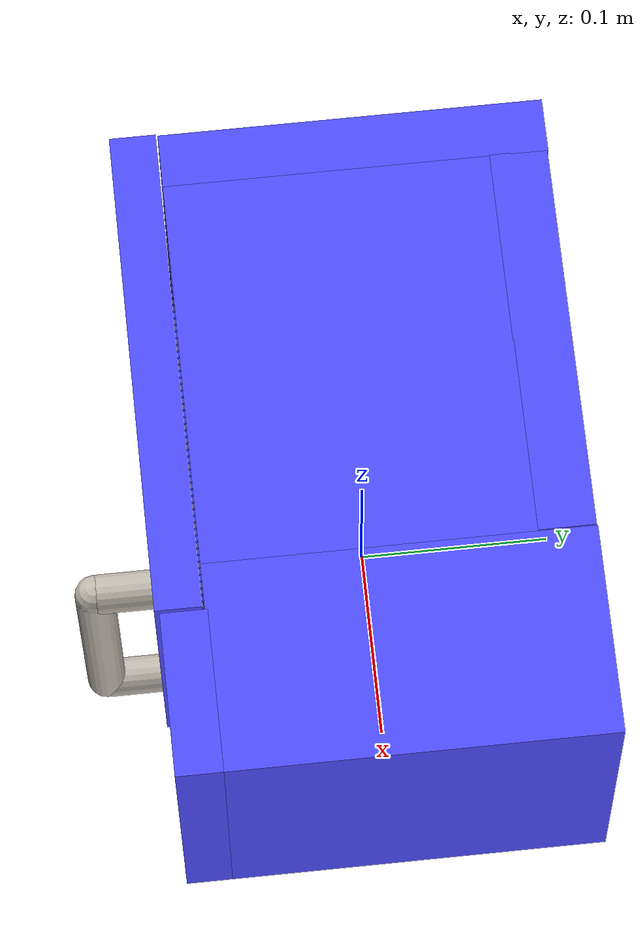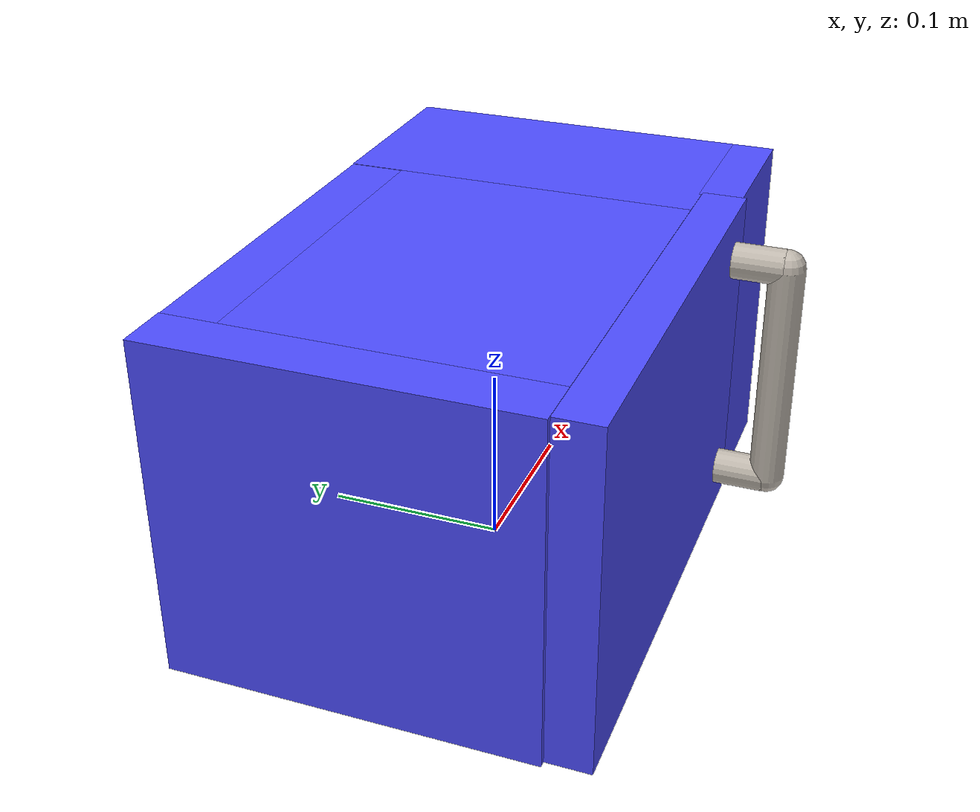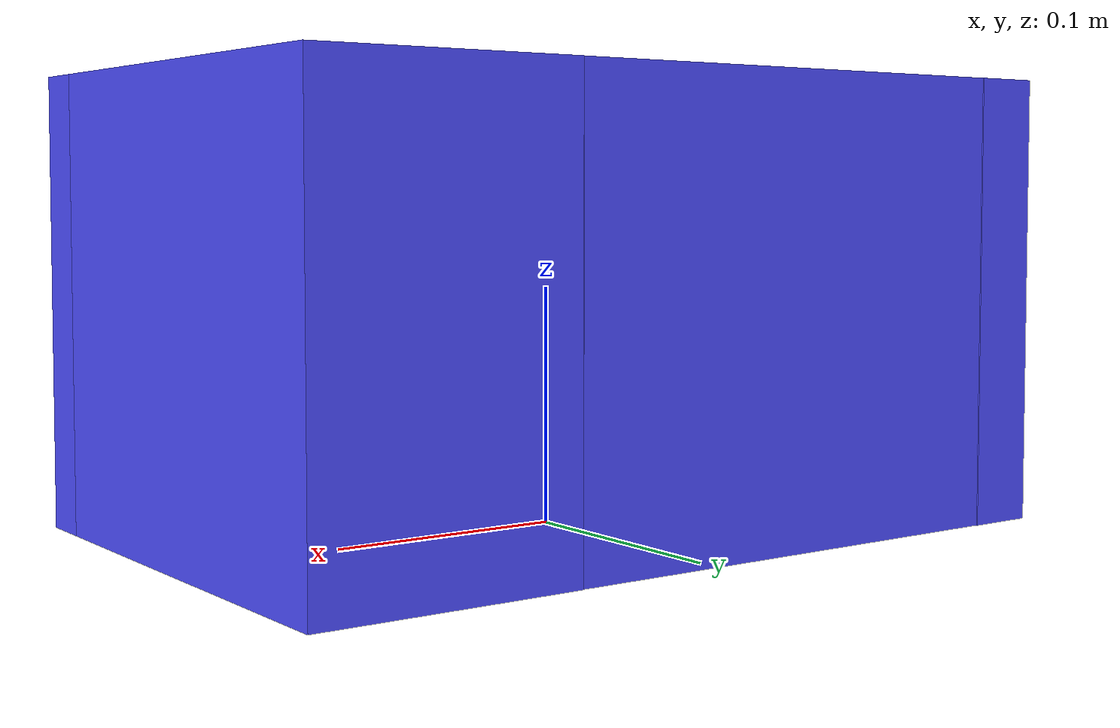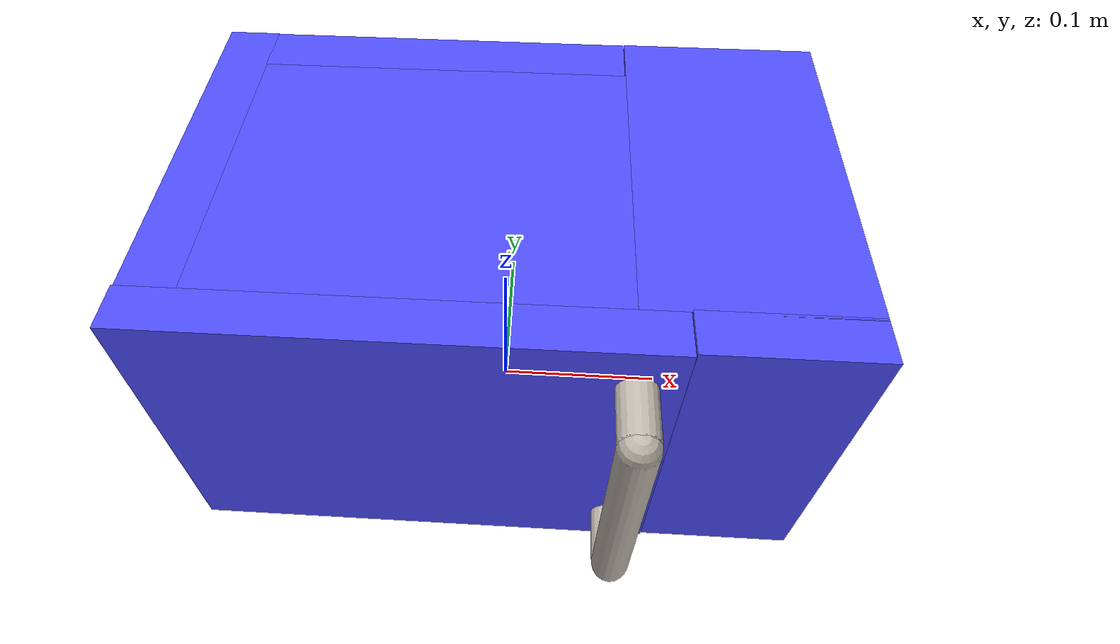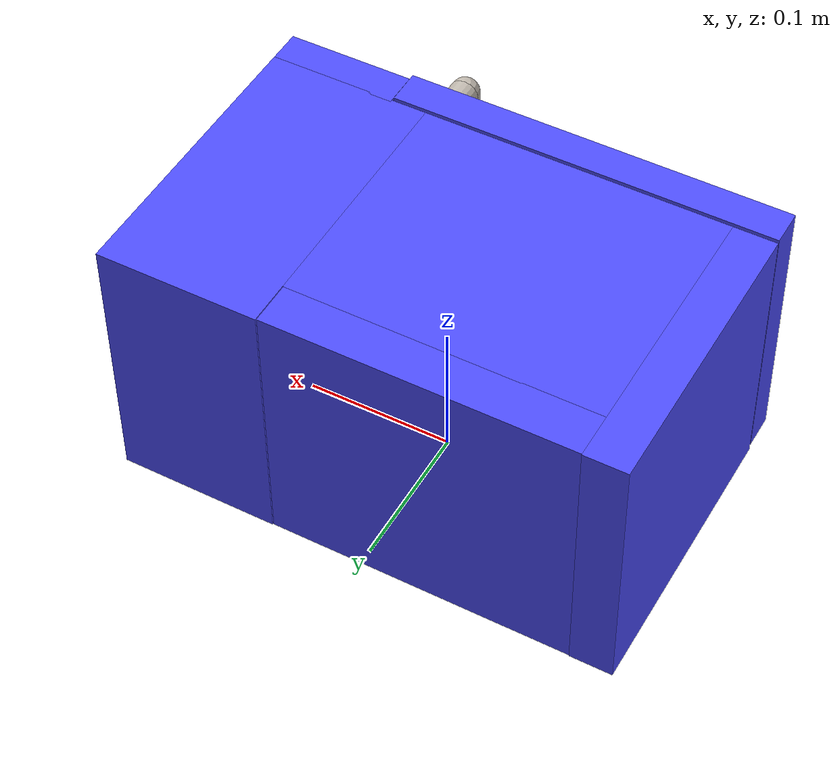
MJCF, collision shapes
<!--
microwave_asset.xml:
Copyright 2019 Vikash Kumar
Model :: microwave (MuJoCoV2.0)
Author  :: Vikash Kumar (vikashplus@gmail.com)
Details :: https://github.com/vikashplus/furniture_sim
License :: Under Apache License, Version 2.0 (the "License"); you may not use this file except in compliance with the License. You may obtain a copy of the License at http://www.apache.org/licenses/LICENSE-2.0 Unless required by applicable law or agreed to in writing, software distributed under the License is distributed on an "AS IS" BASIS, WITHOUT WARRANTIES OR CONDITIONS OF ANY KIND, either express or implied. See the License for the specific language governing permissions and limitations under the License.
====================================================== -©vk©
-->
<mujoco model="gray_microwave">
  <compiler angle="radian" autolimits="true" />
  <option cone="elliptic" impratio="10" />
  <include file="./assets/microwave/microwave_asset.xml" />
  <worldbody>
    <body name="gray_microwave_body" childclass="microwave">
      <inertial pos="0 0 0.0935" quat="1 0 0 0" mass="1000" diaginertia="0.373 0.770 0.793" />
      <geom class="visual" mesh="micro" />
      <geom class="visual" material="micro_metal" mesh="microbutton" />
      <geom class="visual" material="micro_metal" mesh="microfeet" />
      <site type="sphere" name="placement_site" quat="0.7071068 0 0 -0.7071068" pos="-0.04 0 0.02" size="0.01" group="0" rgba="1 1 0 1" />
      <geom class="collision" pos="-0.158 0.0115 0.0935" size="0.0145 0.0995 0.0935" type="box" mass=".5" />
      <geom class="collision" pos="0.118 0.0115 0.0935" size="0.0545 0.0995 0.0935" type="box" mass=".5" />
      <geom class="collision" pos="-0.0405 0.0955 0.0935" size="0.1035 0.015 0.0935" type="box" mass=".5" />
      <geom class="collision" pos="-0.04 -0.0035 0.1775" size="0.1035 0.0845 0.0095" type="box" mass=".5" />
      <geom class="collision" pos="-0.04 -0.004 0.012" size="0.1035 0.084 0.012" type="box" mass=".5" />
      <geom class="collision" pos="0.13 -0.0985 0.0935" size="0.0425 0.012 0.0935" type="box" mass=".5" />
      <body name="microdoorroot" pos="-0.1725 -0.088 0.096">
        <joint axis="0 0 1" limited="true" name="door_joint" range="-2.094 0" springref="0" stiffness="4" />
        <inertial pos="0.12 -0.013 0" quat="1 0 0 0" mass="0.3" diaginertia="0.0151 0.0442 0.0293" />
        <geom class="visual" mesh="microdoor" pos="0.1725 0.088 -0.096" />
        <geom class="visual" material="micro_window" mesh="microwindow" pos="0.1725 0.088 -0.096" />
        <geom class="visual" material="micro_metal" pos="0.2375 -0.054 0" size="0.01 0.065" type="capsule" />
        <geom class="visual" material="micro_metal" euler="1.57 0 0" pos="0.2375 -0.0375 0.065" size="0.01 0.015" type="capsule" />
        <geom class="visual" material="micro_metal" euler="1.57 0 0" pos="0.2375 -0.0375 -0.065" size="0.01 0.015" type="capsule" />
        <geom class="collision" pos="0.2375 -0.054 0" size="0.01 0.065" type="capsule" mass="0.020" />
        <geom class="collision" euler="1.57 0 0" pos="0.2375 -0.0375 0.065" size="0.01 0.015" type="capsule" mass="0.020" />
        <geom class="collision" euler="1.57 0 0" pos="0.2375 -0.0375 -0.065" size="0.01 0.015" type="capsule" mass="0.020" />
        <geom class="collision" pos="0.1295 -0.013 0" size="0.1295 0.012 0.0925" type="box" mass="0.20" />
        <site type="sphere" name="microhandle_site" pos="0.2375 -0.054 0" size="0.005" group="3" rgba="1 1 0 1" />
      </body>
    </body>
  </worldbody>
</mujoco>

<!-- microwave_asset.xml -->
<mujocoinclude>

    <compiler meshdir="./" texturedir="./" inertiagrouprange="4 4" angle="radian"/>

    <asset>
        <mesh scale="0.8 0.8 0.8" file="micro.stl" name="micro"/>
        <mesh scale="0.8 0.8 0.8" file="microdoor.stl" name="microdoor"/>
        <mesh scale="0.8 0.8 0.8" file="microbutton.stl" name="microbutton"/>
        <mesh scale="0.8 0.8 0.8" file="microfeet.stl" name="microfeet"/>
        <mesh scale="0.8 0.8 0.8" file="microhandle.stl" name="microhandle"/>
        <mesh scale="0.8 0.8 0.8" file="microwindow.stl" name="microwindow"/>

        <texture name="T_micro_metal" type="cube" height="1" width="1" file="metal0.png"/>

        <material name="micro_metal" rgba="1 1 1 1" texture="T_micro_metal" texrepeat="3 3" reflectance="1" shininess="1" texuniform="false"/>
        <material name="micro_black" rgba=".2 .2 .2 1" reflectance="1" shininess="1"/>
        <material name="micro_white" rgba=".8 .8 .82 1" reflectance="1" shininess="1"/>
        <material name="micro_window" rgba=".4 .4 .4 .25" reflectance="1" shininess="1"/>
        <material name="micro_collision_blue" rgba="0.3 0.3 1.0 0.5" shininess="0" specular="0"/>
    </asset>

    <default>
        <default class="microwave">
            <joint damping="2" frictionloss="2" armature=".01" limited="true"/>
            <default class="visual">
                <geom type="mesh" group="2" contype="0" conaffinity="0" material="micro_black"/>
            </default>
            <default class="collision">
                <geom type="mesh" condim="3" group="3" margin="0.001" material="micro_collision_blue" solimp=".8 .9 .01" solref=".02 1"/>
            </default>
        </default>
    </default>

</mujocoinclude>
